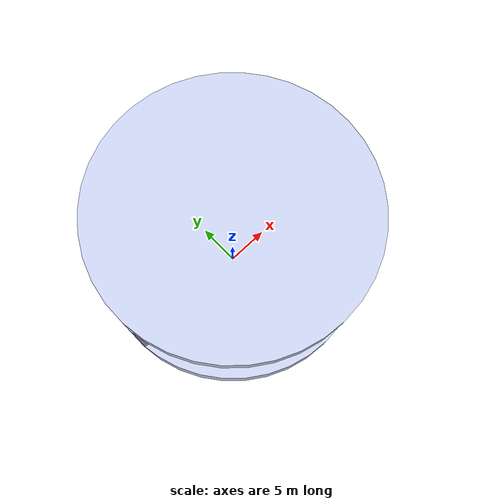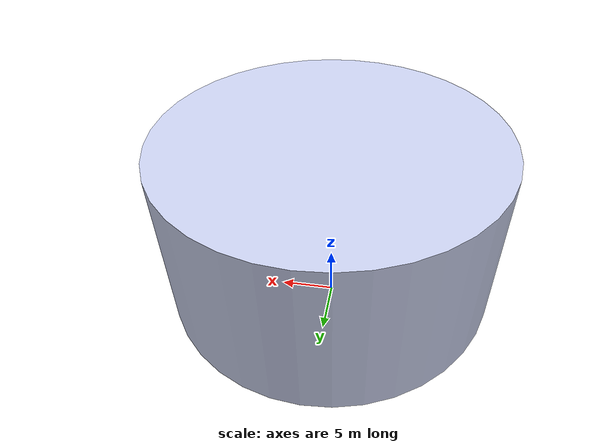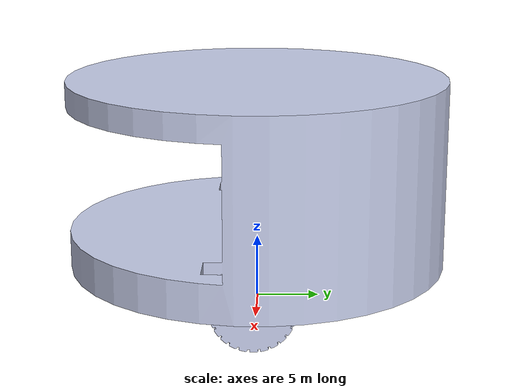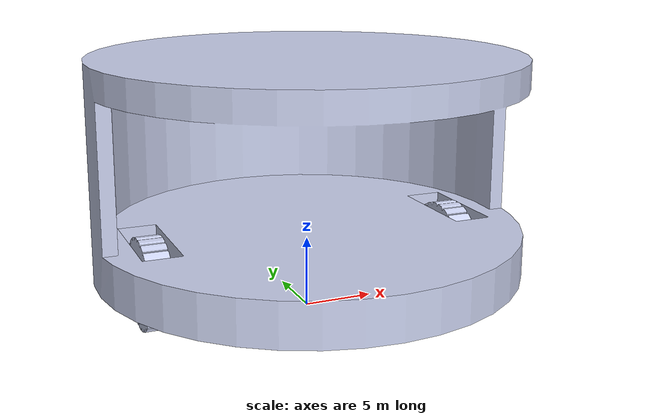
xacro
<?xml version="1.0"?>

<robot name="susy" xmlns:xacro="http://www.ros.org/wiki/xacro">

<xacro:include filename="$(find susy_description)/urdf/susy_gazebo.xacro"/>
<xacro:include filename="$(find susy_description)/urdf/susy_ros2_control.xacro"/>
<xacro:property name="PI" value="3.14159265359"/>

  <link name="world"/>

  <link name="base_link">
    <inertial>
      <origin xyz="-0.034449 0.0047388 0.015024" rpy="0 0 0" />
      <mass value="0.010403" />
      <inertia
        ixx="7.888E-07"
        ixy="4.0447E-24"
        ixz="-4.6448E-24"
        iyy="1.1661E-06"
        iyz="1.6738E-24"
        izz="7.6385E-07" />
    </inertial>
    <visual>
      <origin
        xyz="-15 15 3.1"
        rpy="${PI/2} 0 0" />
      <geometry>
        <mesh
          filename="package://susy_description/3Dmodels/base_simple.STL" />
      </geometry>
      <material
        name="">
        <color
          rgba="0.79216 0.81961 0.93333 1" />
      </material>
    </visual>
    <collision>
      <origin
        xyz="0 0 0"
        rpy="0 0 0" />
      <geometry>
        <mesh
          filename="package://susy_description/3Dmodels/base_simple.STL" />
      </geometry>
    </collision>
  </link>

  <joint name="virtual_joint" type="fixed">
      <origin xyz="0 0 0" rpy="0 0 0"/>
      <parent link="world"/>
      <child link="base_link"/>
  </joint>

  <link
    name="left_wheel">
    <inertial>
      <origin
        xyz="0 4.33680868994202E-19 1.73472347597681E-18"
        rpy="0 0 0" />
      <mass
        value="5.31571052376294E-05" />
      <inertia
        ixx="2.65196676411872E-10"
        ixy="7.18881747627078E-27"
        ixz="-2.7133634443945E-27"
        iyy="1.45400341050665E-10"
        iyz="-4.35230298590259E-26"
        izz="1.45400341050665E-10" />
    </inertial>
    <visual>
      <origin xyz="0 -3.2 -3.2" rpy="0 0 0" />
      <geometry>
        <mesh filename="package://susy_description/3Dmodels/rueda.STL" />
      </geometry>
      <material name="">
        <color rgba="0.792156862745098 0.819607843137255 0.933333333333333 1" />
      </material>
    </visual>
    <collision>
      <origin xyz="0 0 0" rpy="0 0 0" />
      <geometry>
        <mesh filename="package://susy_description/3Dmodels/rueda.STL" />
      </geometry>
    </collision>
  </link>
  <joint
    name="base_left_wheel" type="continuous">
    <origin xyz="-12.2 0 3.2" rpy="1.5708 0 0" />
    <parent
      link="base_link" />
    <child
      link="left_wheel" />
    <axis
      xyz="1 0 0" />
  </joint>
  <link
    name="right_wheel">
    <inertial>
      <origin
        xyz="0 4.33680868994202E-19 -1.73472347597681E-18"
        rpy="0 0 0" />
      <mass
        value="5.31571052376292E-05" />
      <inertia
        ixx="2.65196676411871E-10"
        ixy="5.99850227570605E-27"
        ixz="-1.26032668765701E-27"
        iyy="1.45400341050665E-10"
        iyz="-4.01532792299361E-26"
        izz="1.45400341050665E-10" />
    </inertial>
    <visual>
      <origin xyz="0 -3.2 -3.2" rpy="0 0 0" />
      <geometry>
        <mesh
          filename="package://susy_description/3Dmodels/rueda.STL" />
      </geometry>
      <material
        name="">
        <color
          rgba="0.792156862745098 0.819607843137255 0.933333333333333 1" />
      </material>
    </visual>
    <collision>
      <origin
        xyz="0 0 0"
        rpy="0 0 0" />
      <geometry>
        <mesh
          filename="package://susy_description/3Dmodels/rueda.STL" />
      </geometry>
    </collision>
  </link>
  <joint
    name="base_right_wheel"
    type="continuous">
    <origin xyz="10.5 0 3.2" rpy="1.5708 0 0" />
    <parent
      link="base_link" />
    <child
      link="right_wheel" />
    <axis
      xyz="1 0 0" />
  </joint>
  <link
    name="front_caster">
    <inertial>
      <origin
        xyz="0 0.00194107729719985 -3.46944695195361E-18"
        rpy="0 0 0" />
      <mass
        value="1.19568337316797E-05" />
      <inertia
        ixx="1.10150680331523E-11"
        ixy="1.84136831372096E-44"
        ixz="-1.70132457547993E-44"
        iyy="8.50890915412933E-12"
        iyz="9.91516005255474E-28"
        izz="1.10150680331523E-11" />
    </inertial>
    <visual>
      <origin
        xyz="0 0 0"
        rpy="0 0 0" />
      <geometry>
        <mesh
          filename="package://susy_description/3Dmodels/caster_front.STL" />
      </geometry>
      <material
        name="">
        <color
          rgba="0.792156862745098 0.819607843137255 0.933333333333333 1" />
      </material>
    </visual>
    <collision>
      <origin
        xyz="0 0 0"
        rpy="0 0 0" />
      <geometry>
        <mesh
          filename="package://susy_description/3Dmodels/caster_front.STL" />
      </geometry>
    </collision>
  </link>
  <joint
    name="base_front_caster"
    type="fixed">
    <origin
      xyz="0 13 0"
      rpy="1.5708 0 0" />
    <parent
      link="base_link" />
    <child
      link="front_caster" />
    <axis
      xyz="0 0 0" />
  </joint>
</robot>
